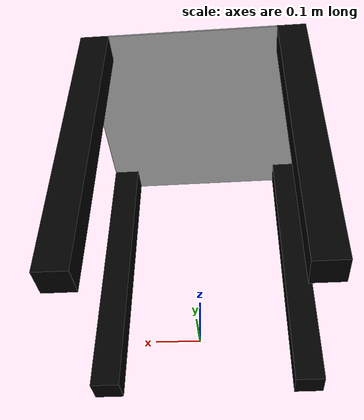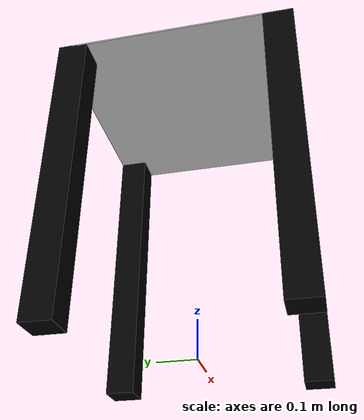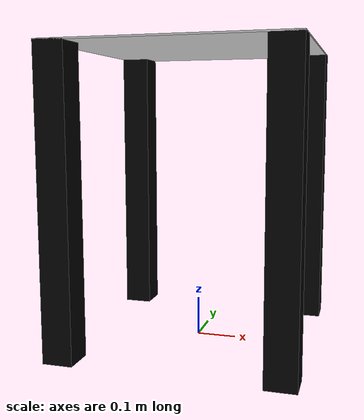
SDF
<?xml version="1.0" ?>
<sdf version="1.5">
  <model name="cash_smash_bin">
    <static>true</static>
    <link name="base_link">

      <collision name="collision">
        <pose>0 0 0 0 0 0</pose>
        <geometry>
          <mesh>
            <uri>model://cash_smash_bin/meshes/cash_smash_bin.dae</uri>
          </mesh>
        </geometry>
      </collision>

      <visual name="visual">
        <cast_shadows>true</cast_shadows>
        <pose>0 0 0 0 0 0</pose>
        <geometry>
          <mesh>
            <uri>model://cash_smash_bin/meshes/cash_smash_bin.dae</uri>
          </mesh>
        </geometry>
      </visual>
    </link>
  </model>
</sdf>
